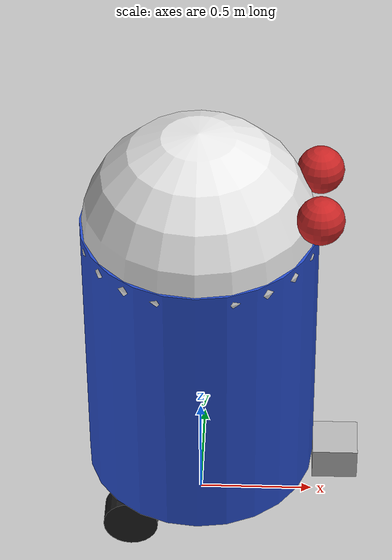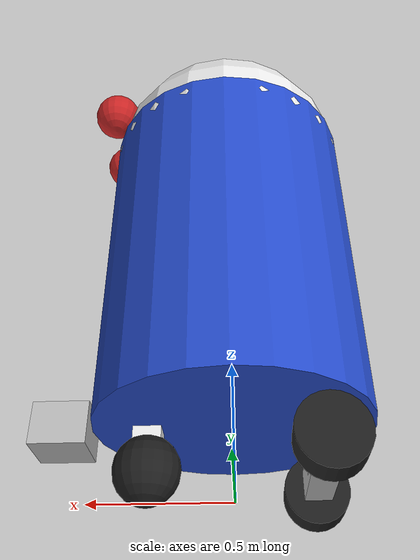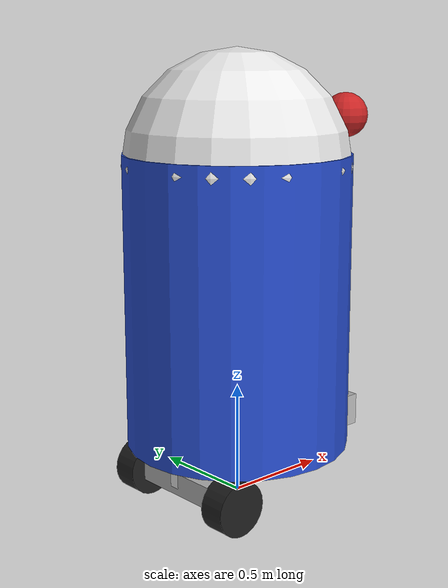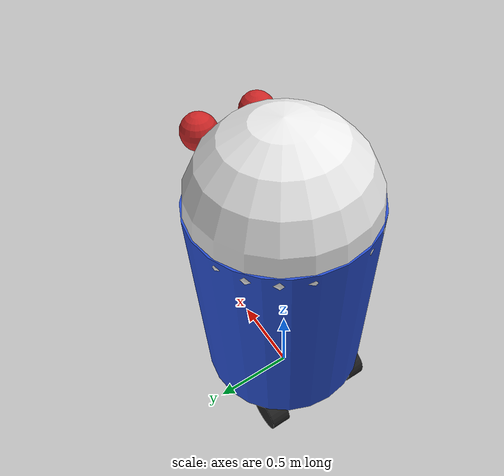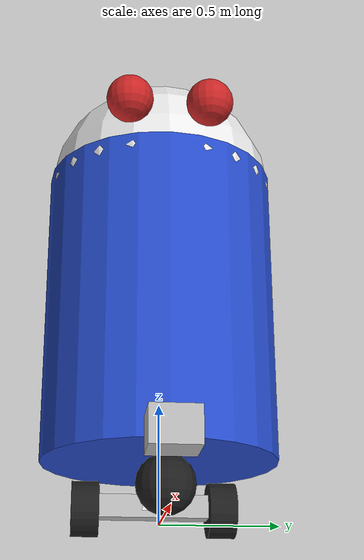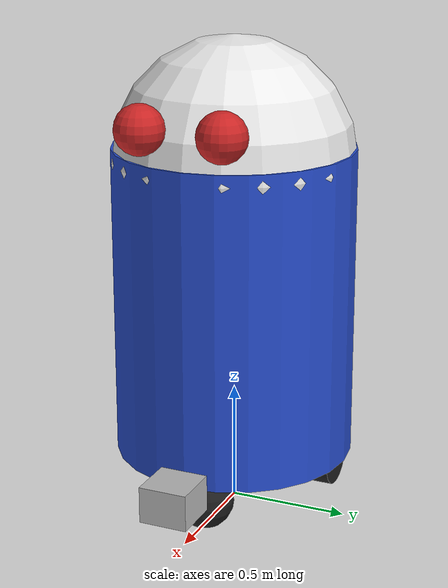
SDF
<sdf version='1.7'>
  <model name='myRobot'>
    <link name='base_footprint'>
      <inertial>
        <pose>0.037209 0 0.283023 0 -0 0</pose>
        <mass>21.5</mass>
        <inertia>
          <ixx>14.941</ixx>
          <ixy>0</ixy>
          <ixz>-0.692581</ixz>
          <iyy>16.0323</iyy>
          <iyz>0</iyz>
          <izz>10.1491</izz>
        </inertia>
      </inertial>
      <collision name='base_footprint_fixed_joint_lump__base_link_collision'>
        <pose>0 0 0.9 0 -0 0</pose>
        <geometry>
          <cylinder>
            <length>1.3</length>
            <radius>0.5</radius>
          </cylinder>
        </geometry>
        <surface>
          <contact>
            <ode/>
          </contact>
          <friction>
            <ode/>
          </friction>
        </surface>
      </collision>
      <collision name='base_footprint_fixed_joint_lump__back_leg_link_collision_1'>
        <pose>-0.3 0 0.2 0 -0 0</pose>
        <geometry>
          <box>
            <size>0.1 0.1 0.2</size>
          </box>
        </geometry>
        <surface>
          <contact>
            <ode/>
          </contact>
          <friction>
            <ode/>
          </friction>
        </surface>
      </collision>
      <collision name='base_footprint_fixed_joint_lump__back_leg_base_link_collision_2'>
        <pose>-0.3 0 0.12 0 -0 1.57075</pose>
        <geometry>
          <box>
            <size>0.5 0.1 0.1</size>
          </box>
        </geometry>
      </collision>
      <collision name='base_footprint_fixed_joint_lump__front_leg_link_collision_3'>
        <pose>0.3 0 0.2 0 -0 0</pose>
        <geometry>
          <box>
            <size>0.1 0.1 0.2</size>
          </box>
        </geometry>
        <surface>
          <contact>
            <ode/>
          </contact>
          <friction>
            <ode/>
          </friction>
        </surface>
      </collision>
      <collision name='base_footprint_fixed_joint_lump__caster_wheel_link_collision_4'>
        <pose>0.3 0 0.11 0 -0 0</pose>
        <geometry>
          <sphere>
            <radius>0.12</radius>
          </sphere>
        </geometry>
        <surface>
          <contact>
            <ode/>
          </contact>
          <friction>
            <ode>
              <mu>0</mu>
              <mu2>0</mu2>
            </ode>
          </friction>
        </surface>
      </collision>
      <collision name='base_footprint_fixed_joint_lump__head_link_collision_5'>
        <pose>0 0 1.5 0 -0 0</pose>
        <geometry>
          <sphere>
            <radius>0.5</radius>
          </sphere>
        </geometry>
        <surface>
          <contact>
            <ode/>
          </contact>
          <friction>
            <ode/>
          </friction>
        </surface>
      </collision>
      <collision name='base_footprint_fixed_joint_lump__head_left_link_collision_6'>
        <pose>0.5 0.17 1.7 0 -0 0</pose>
        <geometry>
          <sphere>
            <radius>0.1</radius>
          </sphere>
        </geometry>
        <surface>
          <contact>
            <ode/>
          </contact>
          <friction>
            <ode/>
          </friction>
        </surface>
      </collision>
      <collision name='base_footprint_fixed_joint_lump__head_right_link_collision_7'>
        <pose>0.5 -0.17 1.7 0 -0 0</pose>
        <geometry>
          <sphere>
            <radius>0.1</radius>
          </sphere>
        </geometry>
        <surface>
          <contact>
            <ode/>
          </contact>
          <friction>
            <ode/>
          </friction>
        </surface>
      </collision>
      <collision name='base_footprint_fixed_joint_lump__lidar_link_collision_8'>
        <pose>0.6 0 0.25 0 -0 0</pose>
        <geometry>
          <box>
            <size>0.2 0.2 0.15</size>
          </box>
        </geometry>
        <surface>
          <contact>
            <ode/>
          </contact>
          <friction>
            <ode/>
          </friction>
        </surface>
      </collision>
      <visual name='base_footprint_fixed_joint_lump__base_link_visual'>
        <pose>0 0 0.9 0 -0 0</pose>
        <geometry>
          <cylinder>
            <length>1.3</length>
            <radius>0.5</radius>
          </cylinder>
        </geometry>
        <material>
          <script>
            <name>Gazebo/Blue</name>
            <uri>file://media/materials/scripts/gazebo.material</uri>
          </script>
        </material>
      </visual>
      <visual name='base_footprint_fixed_joint_lump__back_leg_link_visual_1'>
        <pose>-0.3 0 0.2 0 -0 0</pose>
        <geometry>
          <box>
            <size>0.1 0.1 0.2</size>
          </box>
        </geometry>
        <material>
          <script>
            <name>Gazebo/White</name>
            <uri>file://media/materials/scripts/gazebo.material</uri>
          </script>
        </material>
      </visual>
      <visual name='base_footprint_fixed_joint_lump__back_leg_base_link_visual_2'>
        <pose>-0.3 0 0.12 0 -0 1.57075</pose>
        <geometry>
          <box>
            <size>0.5 0.1 0.1</size>
          </box>
        </geometry>
      </visual>
      <visual name='base_footprint_fixed_joint_lump__front_leg_link_visual_3'>
        <pose>0.3 0 0.2 0 -0 0</pose>
        <geometry>
          <box>
            <size>0.1 0.1 0.2</size>
          </box>
        </geometry>
        <material>
          <script>
            <name>Gazebo/White</name>
            <uri>file://media/materials/scripts/gazebo.material</uri>
          </script>
        </material>
      </visual>
      <visual name='base_footprint_fixed_joint_lump__caster_wheel_link_visual_4'>
        <pose>0.3 0 0.11 0 -0 0</pose>
        <geometry>
          <sphere>
            <radius>0.12</radius>
          </sphere>
        </geometry>
        <material>
          <script>
            <name>Gazebo/Black</name>
            <uri>file://media/materials/scripts/gazebo.material</uri>
          </script>
        </material>
      </visual>
      <visual name='base_footprint_fixed_joint_lump__head_link_visual_5'>
        <pose>0 0 1.5 0 -0 0</pose>
        <geometry>
          <sphere>
            <radius>0.5</radius>
          </sphere>
        </geometry>
        <material>
          <script>
            <name>Gazebo/White</name>
            <uri>file://media/materials/scripts/gazebo.material</uri>
          </script>
        </material>
      </visual>
      <visual name='base_footprint_fixed_joint_lump__head_left_link_visual_6'>
        <pose>0.5 0.17 1.7 0 -0 0</pose>
        <geometry>
          <sphere>
            <radius>0.1</radius>
          </sphere>
        </geometry>
        <material>
          <script>
            <name>Gazebo/Red</name>
            <uri>file://media/materials/scripts/gazebo.material</uri>
          </script>
        </material>
      </visual>
      <visual name='base_footprint_fixed_joint_lump__head_right_link_visual_7'>
        <pose>0.5 -0.17 1.7 0 -0 0</pose>
        <geometry>
          <sphere>
            <radius>0.1</radius>
          </sphere>
        </geometry>
        <material>
          <script>
            <name>Gazebo/Red</name>
            <uri>file://media/materials/scripts/gazebo.material</uri>
          </script>
        </material>
      </visual>
      <visual name='base_footprint_fixed_joint_lump__lidar_link_visual_8'>
        <pose>0.6 0 0.25 0 -0 0</pose>
        <geometry>
          <box>
            <size>0.2 0.2 0.15</size>
          </box>
        </geometry>
      </visual>
      <sensor name='laser' type='ray'>
        <visualize>1</visualize>
        <update_rate>5</update_rate>
        <ray>
          <scan>
            <horizontal>
              <samples>720</samples>
              <resolution>1</resolution>
              <min_angle>-1.75</min_angle>
              <max_angle>1.75</max_angle>
            </horizontal>
          </scan>
          <range>
            <min>0.25</min>
            <max>10</max>
            <resolution>0.015</resolution>
          </range>
        </ray>
        <plugin name='laser_controller' filename='libgazebo_ros_ray_sensor.so'>
          <ros>
            <argument>~/out:=scan</argument>
          </ros>
          <output_type>sensor_msgs/LaserScan</output_type>
          <frame_name>lidar_link</frame_name>
        </plugin>
        <pose>0.6 0 0.25 0 -0 0</pose>
      </sensor>
    </link>
    <joint name='base_to_left_wheel_joint' type='revolute'>
      <pose relative_to='base_footprint'>-0.3 0.3 0.11 0 -0 0</pose>
      <parent>base_footprint</parent>
      <child>left_wheel_link</child>
      <axis>
        <xyz>0 1 0</xyz>
        <limit>
          <lower>-1e+16</lower>
          <upper>1e+16</upper>
        </limit>
        <dynamics>
          <spring_reference>0</spring_reference>
          <spring_stiffness>0</spring_stiffness>
        </dynamics>
      </axis>
    </joint>
    <link name='left_wheel_link'>
      <pose relative_to='base_to_left_wheel_joint'>0 0 0 0 -0 0</pose>
      <inertial>
        <pose>0 0 0 0 -0 0</pose>
        <mass>1</mass>
        <inertia>
          <ixx>1</ixx>
          <ixy>0</ixy>
          <ixz>0</ixz>
          <iyy>1</iyy>
          <iyz>0</iyz>
          <izz>1</izz>
        </inertia>
      </inertial>
      <collision name='left_wheel_link_collision'>
        <pose>0 0 0 1.57075 -0 0</pose>
        <geometry>
          <cylinder>
            <length>0.12</length>
            <radius>0.12</radius>
          </cylinder>
        </geometry>
        <surface>
          <contact>
            <ode/>
          </contact>
          <friction>
            <ode/>
          </friction>
        </surface>
      </collision>
      <visual name='left_wheel_link_visual'>
        <pose>0 0 0 1.57075 -0 0</pose>
        <geometry>
          <cylinder>
            <length>0.12</length>
            <radius>0.12</radius>
          </cylinder>
        </geometry>
        <material>
          <script>
            <name>Gazebo/Black</name>
            <uri>file://media/materials/scripts/gazebo.material</uri>
          </script>
        </material>
      </visual>
    </link>
    <joint name='base_to_right_wheel_joint' type='revolute'>
      <pose relative_to='base_footprint'>-0.3 -0.3 0.11 0 -0 0</pose>
      <parent>base_footprint</parent>
      <child>right_wheel_link</child>
      <axis>
        <xyz>0 1 0</xyz>
        <limit>
          <lower>-1e+16</lower>
          <upper>1e+16</upper>
        </limit>
        <dynamics>
          <spring_reference>0</spring_reference>
          <spring_stiffness>0</spring_stiffness>
        </dynamics>
      </axis>
    </joint>
    <link name='right_wheel_link'>
      <pose relative_to='base_to_right_wheel_joint'>0 0 0 0 -0 0</pose>
      <inertial>
        <pose>0 0 0 0 -0 0</pose>
        <mass>1</mass>
        <inertia>
          <ixx>1</ixx>
          <ixy>0</ixy>
          <ixz>0</ixz>
          <iyy>1</iyy>
          <iyz>0</iyz>
          <izz>1</izz>
        </inertia>
      </inertial>
      <collision name='right_wheel_link_collision'>
        <pose>0 0 0 1.57075 -0 0</pose>
        <geometry>
          <cylinder>
            <length>0.12</length>
            <radius>0.12</radius>
          </cylinder>
        </geometry>
        <surface>
          <contact>
            <ode/>
          </contact>
          <friction>
            <ode>
              <mu>0.5</mu>
              <mu2>0.5</mu2>
            </ode>
          </friction>
        </surface>
      </collision>
      <visual name='right_wheel_link_visual'>
        <pose>0 0 0 1.57075 -0 0</pose>
        <geometry>
          <cylinder>
            <length>0.12</length>
            <radius>0.12</radius>
          </cylinder>
        </geometry>
        <material>
          <script>
            <name>Gazebo/Black</name>
            <uri>file://media/materials/scripts/gazebo.material</uri>
          </script>
        </material>
      </visual>
      <mu3 value='0.5'/>
    </link>
    <plugin name='diff_drive' filename='libgazebo_ros_diff_drive.so'>
      <update_rate>10</update_rate>
      <left_joint>base_to_left_wheel_joint</left_joint>
      <right_joint>base_to_right_wheel_joint</right_joint>
      <wheel_separation>0.6</wheel_separation>
      <wheel_diameter>0.12</wheel_diameter>
      <cmd_vel_timeout>0.5</cmd_vel_timeout>
      <odometry_frame>odom</odometry_frame>
      <robot_base_frame>base_footprint</robot_base_frame>
      <publish_odom>1</publish_odom>
      <publish_odom_tf>1</publish_odom_tf>
      <publish_wheel_tf>0</publish_wheel_tf>
    </plugin>
    <plugin name='joint_state_publisher' filename='libgazebo_ros_joint_state_publisher.so'>
      <update_rate>10</update_rate>
      <joint_name>base_to_left_wheel_joint</joint_name>
      <joint_name>base_to_right_wheel_joint</joint_name>
    </plugin>
    <frame name='back_leg_to_leg_base_joint' attached_to='back_leg_link'>
      <pose>0 0 -0.08 0 -0 1.57075</pose>
    </frame>
    <frame name='back_leg_base_link' attached_to='back_leg_to_leg_base_joint'/>
    <frame name='base_to_back_leg_joint' attached_to='base_link'>
      <pose>-0.3 0 0.2 0 -0 0</pose>
    </frame>
    <frame name='back_leg_link' attached_to='base_to_back_leg_joint'/>
    <frame name='front_leg_to_caster_joint' attached_to='front_leg_link'>
      <pose>0 0 -0.09 0 -0 0</pose>
    </frame>
    <frame name='caster_wheel_link' attached_to='front_leg_to_caster_joint'/>
    <frame name='base_to_front_leg_joint' attached_to='base_link'>
      <pose>0.3 0 0.2 0 -0 0</pose>
    </frame>
    <frame name='front_leg_link' attached_to='base_to_front_leg_joint'/>
    <frame name='base_to_head_joint' attached_to='base_link'>
      <pose>0 0 1.5 0 -0 0</pose>
    </frame>
    <frame name='head_link' attached_to='base_to_head_joint'/>
    <frame name='base_to_head_left_joint' attached_to='base_link'>
      <pose>0.5 0.17 1.7 0 -0 0</pose>
    </frame>
    <frame name='head_left_link' attached_to='base_to_head_left_joint'/>
    <frame name='base_to_head_right_joint' attached_to='base_link'>
      <pose>0.5 -0.17 1.7 0 -0 0</pose>
    </frame>
    <frame name='head_right_link' attached_to='base_to_head_right_joint'/>
    <frame name='base_to_lidar_joint' attached_to='base_link'>
      <pose>0.6 0 0.25 0 -0 0</pose>
    </frame>
    <frame name='lidar_link' attached_to='base_to_lidar_joint'/>
    <frame name='base_to_footprint_joint' attached_to='base_footprint'>
      <pose>0 0 0 0 -0 0</pose>
    </frame>
    <frame name='base_link' attached_to='base_to_footprint_joint'/>
  </model>
</sdf>
